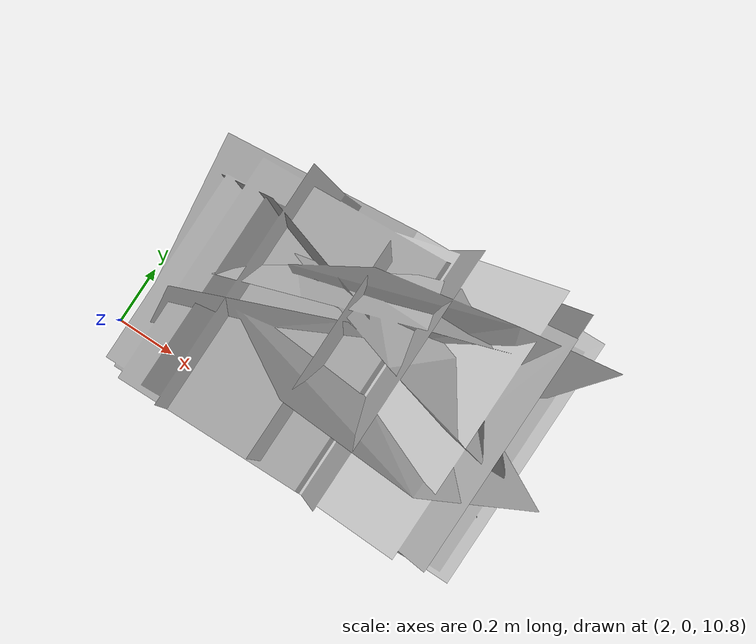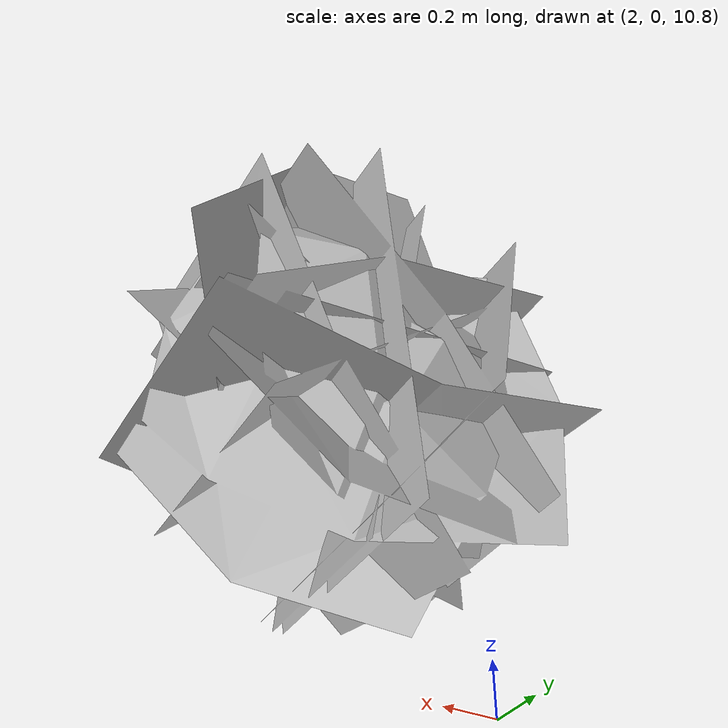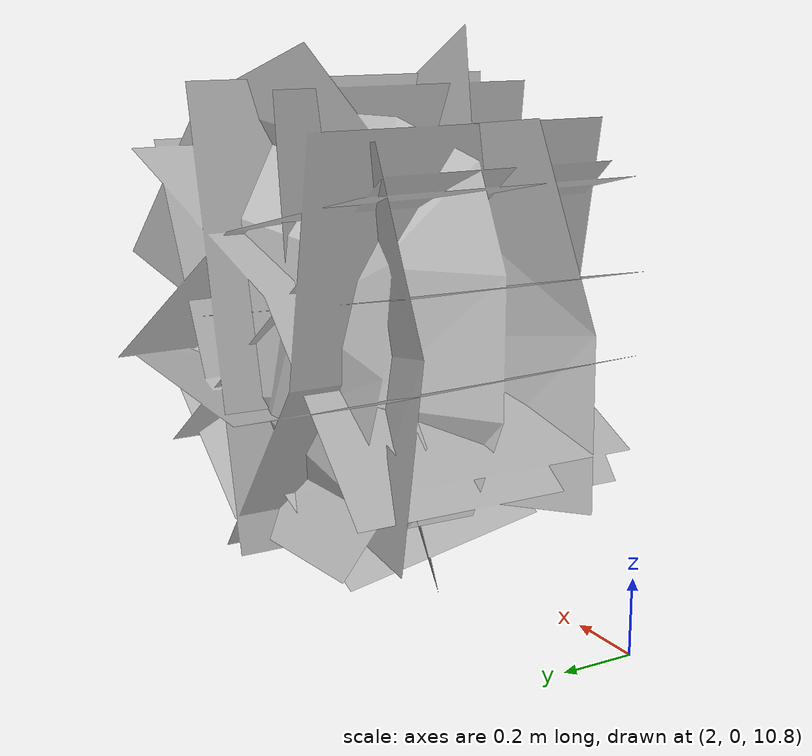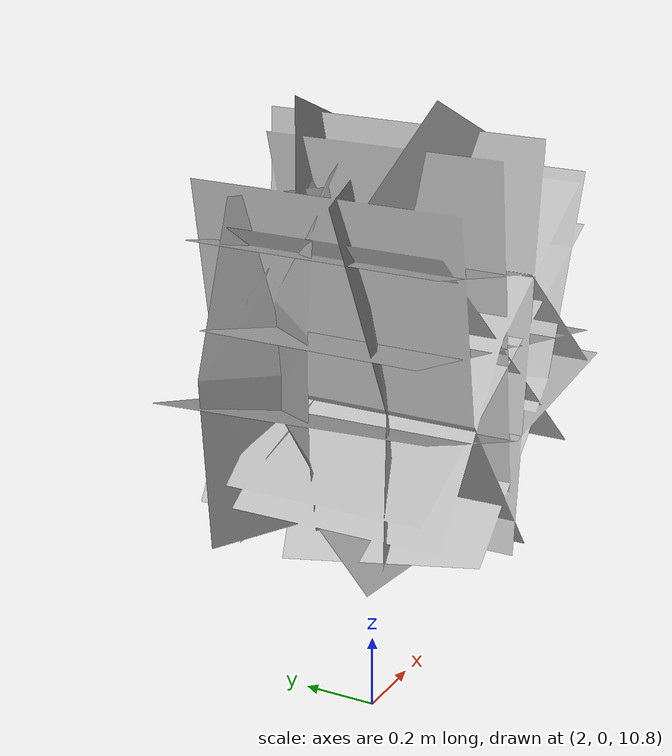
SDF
<?xml version="1.0" ?>
<sdf version="1.9">
  <model name="flowers_04">
    <static>true</static>
    <link name="link">
      <collision name="collision">
        <pose>0 0 0.2 0 0 0</pose>
        <geometry>
          <box>
            <size>0.5 0.5 0.4</size>
          </box>
        </geometry>
      </collision>
      <visual name="visual">
        <geometry>
          <mesh>
            <uri>model://flowers_04/meshes/Flowers-04.obj</uri>
          </mesh>
        </geometry>
      </visual>
    </link>
  </model>
</sdf>
